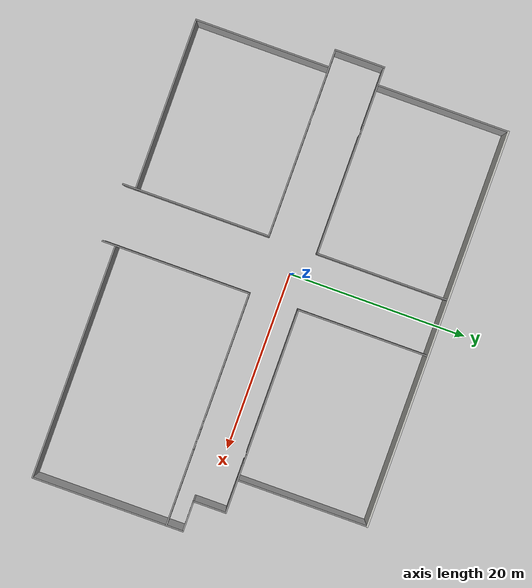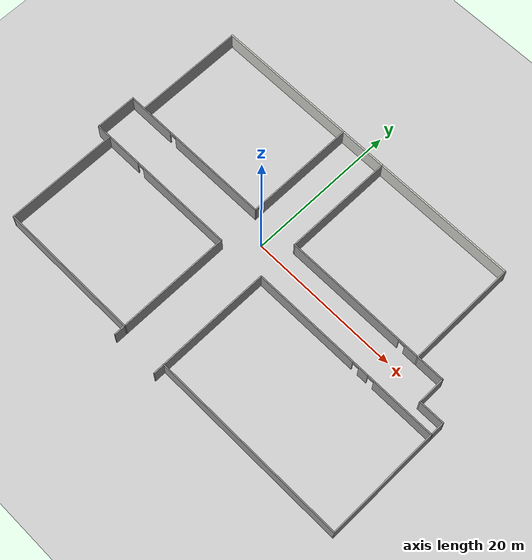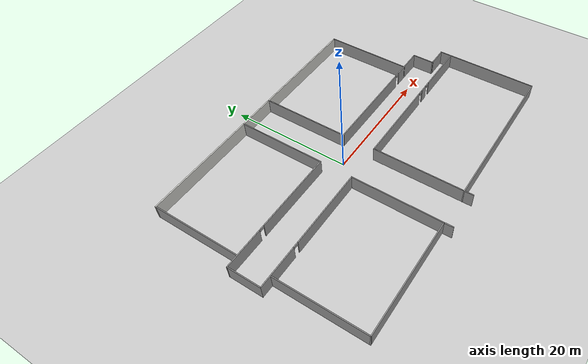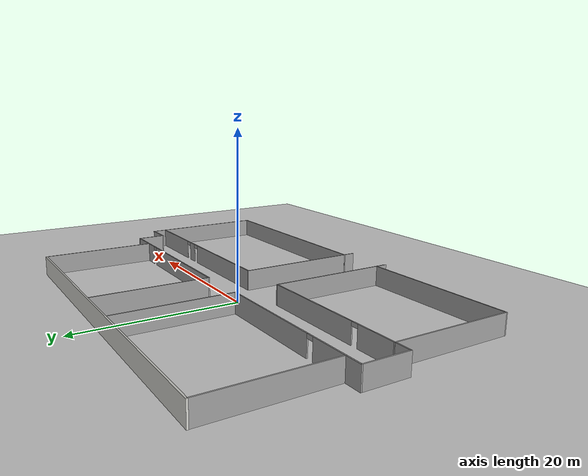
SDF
<sdf version="1.6">
 <world name="default">
  <model name="ground_plane">
   <static>1</static>
   <link name="link">
    <collision name="collision">
     <geometry><plane><normal>0 0 1</normal><size>100 100</size></plane></geometry>
     <surface>
      <contact><collide_bitmask>65535</collide_bitmask></contact>
      <friction><ode><mu>100</mu><mu2>50</mu2></ode></friction>
     </surface>
    </collision>
    <visual name="visual">
     <cast_shadows>0</cast_shadows>
     <geometry><plane><normal>0 0 1</normal><size>100 100</size></plane></geometry>
     <material>
      <script><uri>file://media/materials/scripts/gazebo.material</uri><name>Gazebo/Grey</name></script>
     </material>
    </visual>
   </link>
  </model>
  <model name="H_Block_Model">
   <link name="Wall_10">
    <pose>-26.5 0.832901 0 0 0 -1.5708</pose>
    <visual name="Wall_10_Visual">
     <pose>0 0 1.25 0 -0 0</pose>
     <geometry><box><size>5.593 0.15 2.5</size></box></geometry>
     <material>
      <script><uri>file://media/materials/scripts/gazebo.material</uri><name>Gazebo/Grey</name></script>
      <ambient>1 1 1 1</ambient>
     </material>
     <meta><layer>0</layer></meta>
    </visual>
    <collision name="Wall_10_Collision">
     <pose>0 0 1.25 0 -0 0</pose>
     <geometry><box><size>5.593 0.15 2.5</size></box></geometry>
     <surface>
      <friction>
       <ode><mu>1</mu><mu2>1</mu2><fdir1>0 0 0</fdir1><slip1>0</slip1><slip2>0</slip2></ode>
       <torsional>
        <coefficient>1</coefficient>
        <patch_radius>0</patch_radius>
        <surface_radius>0</surface_radius>
        <use_patch_radius>1</use_patch_radius>
        <ode><slip>0</slip></ode>
       </torsional>
      </friction>
      <bounce><restitution_coefficient>0</restitution_coefficient><threshold>1e+06</threshold></bounce>
      <contact>
       <collide_without_contact>0</collide_without_contact>
       <collide_without_contact_bitmask>1</collide_without_contact_bitmask>
       <collide_bitmask>1</collide_bitmask>
       <ode>
        <soft_cfm>0</soft_cfm>
        <soft_erp>0.2</soft_erp>
        <kp>1e+13</kp>
        <kd>1</kd>
        <max_vel>0.01</max_vel>
        <min_depth>0</min_depth>
       </ode>
       <bullet>
        <split_impulse>1</split_impulse>
        <split_impulse_penetration_threshold>-0.01</split_impulse_penetration_threshold>
        <soft_cfm>0</soft_cfm>
        <soft_erp>0.2</soft_erp>
        <kp>1e+13</kp>
        <kd>1</kd>
       </bullet>
      </contact>
     </surface>
    </collision>
   </link>
   <link name="Wall_11">
    <pose>-16.11 -1.8886 0 0 -0 0</pose>
    <visual name="Wall_11_Visual_0">
     <pose>-7.00772 0 1.25 0 -0 0</pose>
     <geometry><box><size>6.9143 0.15 2.5</size></box></geometry>
     <material>
      <script><uri>file://media/materials/scripts/gazebo.material</uri><name>Gazebo/Grey</name></script>
      <ambient>1 1 1 1</ambient>
     </material>
     <meta><layer>0</layer></meta>
    </visual>
    <visual name="Wall_11_Visual_1">
     <pose>3.90715 0 1.25 0 -0 0</pose>
     <geometry><box><size>13.1154 0.15 2.5</size></box></geometry>
     <material>
      <script><uri>file://media/materials/scripts/gazebo.material</uri><name>Gazebo/Grey</name></script>
      <ambient>1 1 1 1</ambient>
     </material>
     <meta><layer>0</layer></meta>
    </visual>
    <visual name="Wall_11_Visual_2">
     <pose>-3.10057 0 2.25 0 -0 0</pose>
     <geometry><box><size>0.9 0.15 0.5</size></box></geometry>
     <material>
      <script><uri>file://media/materials/scripts/gazebo.material</uri><name>Gazebo/Grey</name></script>
      <ambient>1 1 1 1</ambient>
     </material>
     <meta><layer>0</layer></meta>
    </visual>
    <collision name="Wall_11_Collision_0">
     <pose>-7.00772 0 1.25 0 -0 0</pose>
     <geometry><box><size>6.9143 0.15 2.5</size></box></geometry>
     <surface>
      <friction>
       <ode><mu>1</mu><mu2>1</mu2><fdir1>0 0 0</fdir1><slip1>0</slip1><slip2>0</slip2></ode>
       <torsional>
        <coefficient>1</coefficient>
        <patch_radius>0</patch_radius>
        <surface_radius>0</surface_radius>
        <use_patch_radius>1</use_patch_radius>
        <ode><slip>0</slip></ode>
       </torsional>
      </friction>
      <bounce><restitution_coefficient>0</restitution_coefficient><threshold>1e+06</threshold></bounce>
      <contact>
       <collide_without_contact>0</collide_without_contact>
       <collide_without_contact_bitmask>1</collide_without_contact_bitmask>
       <collide_bitmask>1</collide_bitmask>
       <ode>
        <soft_cfm>0</soft_cfm>
        <soft_erp>0.2</soft_erp>
        <kp>1e+13</kp>
        <kd>1</kd>
        <max_vel>0.01</max_vel>
        <min_depth>0</min_depth>
       </ode>
       <bullet>
        <split_impulse>1</split_impulse>
        <split_impulse_penetration_threshold>-0.01</split_impulse_penetration_threshold>
        <soft_cfm>0</soft_cfm>
        <soft_erp>0.2</soft_erp>
        <kp>1e+13</kp>
        <kd>1</kd>
       </bullet>
      </contact>
     </surface>
    </collision>
    <collision name="Wall_11_Collision_1">
     <pose>3.90715 0 1.25 0 -0 0</pose>
     <geometry><box><size>13.1154 0.15 2.5</size></box></geometry>
     <surface>
      <friction>
       <ode><mu>1</mu><mu2>1</mu2><fdir1>0 0 0</fdir1><slip1>0</slip1><slip2>0</slip2></ode>
       <torsional>
        <coefficient>1</coefficient>
        <patch_radius>0</patch_radius>
        <surface_radius>0</surface_radius>
        <use_patch_radius>1</use_patch_radius>
        <ode><slip>0</slip></ode>
       </torsional>
      </friction>
      <bounce><restitution_coefficient>0</restitution_coefficient><threshold>1e+06</threshold></bounce>
      <contact>
       <collide_without_contact>0</collide_without_contact>
       <collide_without_contact_bitmask>1</collide_without_contact_bitmask>
       <collide_bitmask>1</collide_bitmask>
       <ode>
        <soft_cfm>0</soft_cfm>
        <soft_erp>0.2</soft_erp>
        <kp>1e+13</kp>
        <kd>1</kd>
        <max_vel>0.01</max_vel>
        <min_depth>0</min_depth>
       </ode>
       <bullet>
        <split_impulse>1</split_impulse>
        <split_impulse_penetration_threshold>-0.01</split_impulse_penetration_threshold>
        <soft_cfm>0</soft_cfm>
        <soft_erp>0.2</soft_erp>
        <kp>1e+13</kp>
        <kd>1</kd>
       </bullet>
      </contact>
     </surface>
    </collision>
    <collision name="Wall_11_Collision_2">
     <pose>-3.10057 0 2.25 0 -0 0</pose>
     <geometry><box><size>0.9 0.15 0.5</size></box></geometry>
     <surface>
      <friction>
       <ode><mu>1</mu><mu2>1</mu2><fdir1>0 0 0</fdir1><slip1>0</slip1><slip2>0</slip2></ode>
       <torsional>
        <coefficient>1</coefficient>
        <patch_radius>0</patch_radius>
        <surface_radius>0</surface_radius>
        <use_patch_radius>1</use_patch_radius>
        <ode><slip>0</slip></ode>
       </torsional>
      </friction>
      <bounce><restitution_coefficient>0</restitution_coefficient><threshold>1e+06</threshold></bounce>
      <contact>
       <collide_without_contact>0</collide_without_contact>
       <collide_without_contact_bitmask>1</collide_without_contact_bitmask>
       <collide_bitmask>1</collide_bitmask>
       <ode>
        <soft_cfm>0</soft_cfm>
        <soft_erp>0.2</soft_erp>
        <kp>1e+13</kp>
        <kd>1</kd>
        <max_vel>0.01</max_vel>
        <min_depth>0</min_depth>
       </ode>
       <bullet>
        <split_impulse>1</split_impulse>
        <split_impulse_penetration_threshold>-0.01</split_impulse_penetration_threshold>
        <soft_cfm>0</soft_cfm>
        <soft_erp>0.2</soft_erp>
        <kp>1e+13</kp>
        <kd>1</kd>
       </bullet>
      </contact>
     </surface>
    </collision>
   </link>
   <link name="Wall_12">
    <pose>-5.72016 -10.0169 0 0 0 -1.57082</pose>
    <visual name="Wall_12_Visual">
     <pose>0 0 1.25 0 -0 0</pose>
     <geometry><box><size>16.407 0.15 2.5</size></box></geometry>
     <material>
      <script><uri>file://media/materials/scripts/gazebo.material</uri><name>Gazebo/Grey</name></script>
      <ambient>1 1 1 1</ambient>
     </material>
     <meta><layer>0</layer></meta>
    </visual>
    <collision name="Wall_12_Collision">
     <pose>0 0 1.25 0 -0 0</pose>
     <geometry><box><size>16.407 0.15 2.5</size></box></geometry>
     <surface>
      <friction>
       <ode><mu>1</mu><mu2>1</mu2><fdir1>0 0 0</fdir1><slip1>0</slip1><slip2>0</slip2></ode>
       <torsional>
        <coefficient>1</coefficient>
        <patch_radius>0</patch_radius>
        <surface_radius>0</surface_radius>
        <use_patch_radius>1</use_patch_radius>
        <ode><slip>0</slip></ode>
       </torsional>
      </friction>
      <bounce><restitution_coefficient>0</restitution_coefficient><threshold>1e+06</threshold></bounce>
      <contact>
       <collide_without_contact>0</collide_without_contact>
       <collide_without_contact_bitmask>1</collide_without_contact_bitmask>
       <collide_bitmask>1</collide_bitmask>
       <ode>
        <soft_cfm>0</soft_cfm>
        <soft_erp>0.2</soft_erp>
        <kp>1e+13</kp>
        <kd>1</kd>
        <max_vel>0.01</max_vel>
        <min_depth>0</min_depth>
       </ode>
       <bullet>
        <split_impulse>1</split_impulse>
        <split_impulse_penetration_threshold>-0.01</split_impulse_penetration_threshold>
        <soft_cfm>0</soft_cfm>
        <soft_erp>0.2</soft_erp>
        <kp>1e+13</kp>
        <kd>1</kd>
       </bullet>
      </contact>
     </surface>
    </collision>
   </link>
   <link name="Wall_14">
    <pose>0.629841 -9.9704 0 0 -0 1.57078</pose>
    <visual name="Wall_14_Visual">
     <pose>0 0 1.25 0 -0 0</pose>
     <geometry><box><size>16.5 0.15 2.5</size></box></geometry>
     <material>
      <script><uri>file://media/materials/scripts/gazebo.material</uri><name>Gazebo/Grey</name></script>
      <ambient>1 1 1 1</ambient>
     </material>
     <meta><layer>0</layer></meta>
    </visual>
    <collision name="Wall_14_Collision">
     <pose>0 0 1.25 0 -0 0</pose>
     <geometry><box><size>16.5 0.15 2.5</size></box></geometry>
     <surface>
      <friction>
       <ode><mu>1</mu><mu2>1</mu2><fdir1>0 0 0</fdir1><slip1>0</slip1><slip2>0</slip2></ode>
       <torsional>
        <coefficient>1</coefficient>
        <patch_radius>0</patch_radius>
        <surface_radius>0</surface_radius>
        <use_patch_radius>1</use_patch_radius>
        <ode><slip>0</slip></ode>
       </torsional>
      </friction>
      <bounce><restitution_coefficient>0</restitution_coefficient><threshold>1e+06</threshold></bounce>
      <contact>
       <collide_without_contact>0</collide_without_contact>
       <collide_without_contact_bitmask>1</collide_without_contact_bitmask>
       <collide_bitmask>1</collide_bitmask>
       <ode>
        <soft_cfm>0</soft_cfm>
        <soft_erp>0.2</soft_erp>
        <kp>1e+13</kp>
        <kd>1</kd>
        <max_vel>0.01</max_vel>
        <min_depth>0</min_depth>
       </ode>
       <bullet>
        <split_impulse>1</split_impulse>
        <split_impulse_penetration_threshold>-0.01</split_impulse_penetration_threshold>
        <soft_cfm>0</soft_cfm>
        <soft_erp>0.2</soft_erp>
        <kp>1e+13</kp>
        <kd>1</kd>
       </bullet>
      </contact>
     </surface>
    </collision>
   </link>
   <link name="Wall_15">
    <pose>13.565 -1.7956 0 0 -0 0</pose>
    <visual name="Wall_15_Visual_0">
     <pose>-5.84501 0 1.25 0 -0 0</pose>
     <geometry><box><size>14.33 0.15 2.5</size></box></geometry>
     <material>
      <script><uri>file://media/materials/scripts/gazebo.material</uri><name>Gazebo/Grey</name></script>
      <ambient>1 1 1 1</ambient>
     </material>
     <meta><layer>0</layer></meta>
    </visual>
    <visual name="Wall_15_Visual_1">
     <pose>2.89569 0 1.25 0 -0 0</pose>
     <geometry><box><size>1.35144 0.15 2.5</size></box></geometry>
     <material>
      <script><uri>file://media/materials/scripts/gazebo.material</uri><name>Gazebo/Grey</name></script>
      <ambient>1 1 1 1</ambient>
     </material>
     <meta><layer>0</layer></meta>
    </visual>
    <visual name="Wall_15_Visual_2">
     <pose>8.74071 0 1.25 0 -0 0</pose>
     <geometry><box><size>8.53858 0.15 2.5</size></box></geometry>
     <material>
      <script><uri>file://media/materials/scripts/gazebo.material</uri><name>Gazebo/Grey</name></script>
      <ambient>1 1 1 1</ambient>
     </material>
     <meta><layer>0</layer></meta>
    </visual>
    <visual name="Wall_15_Visual_3">
     <pose>1.76997 0 2.25 0 -0 0</pose>
     <geometry><box><size>0.9 0.15 0.5</size></box></geometry>
     <material>
      <script><uri>file://media/materials/scripts/gazebo.material</uri><name>Gazebo/Grey</name></script>
      <ambient>1 1 1 1</ambient>
     </material>
     <meta><layer>0</layer></meta>
    </visual>
    <visual name="Wall_15_Visual_4">
     <pose>4.02142 0 2.25 0 -0 0</pose>
     <geometry><box><size>0.9 0.15 0.5</size></box></geometry>
     <material>
      <script><uri>file://media/materials/scripts/gazebo.material</uri><name>Gazebo/Grey</name></script>
      <ambient>1 1 1 1</ambient>
     </material>
     <meta><layer>0</layer></meta>
    </visual>
    <collision name="Wall_15_Collision_0">
     <pose>-5.84501 0 1.25 0 -0 0</pose>
     <geometry><box><size>14.33 0.15 2.5</size></box></geometry>
     <surface>
      <friction>
       <ode><mu>1</mu><mu2>1</mu2><fdir1>0 0 0</fdir1><slip1>0</slip1><slip2>0</slip2></ode>
       <torsional>
        <coefficient>1</coefficient>
        <patch_radius>0</patch_radius>
        <surface_radius>0</surface_radius>
        <use_patch_radius>1</use_patch_radius>
        <ode><slip>0</slip></ode>
       </torsional>
      </friction>
      <bounce><restitution_coefficient>0</restitution_coefficient><threshold>1e+06</threshold></bounce>
      <contact>
       <collide_without_contact>0</collide_without_contact>
       <collide_without_contact_bitmask>1</collide_without_contact_bitmask>
       <collide_bitmask>1</collide_bitmask>
       <ode>
        <soft_cfm>0</soft_cfm>
        <soft_erp>0.2</soft_erp>
        <kp>1e+13</kp>
        <kd>1</kd>
        <max_vel>0.01</max_vel>
        <min_depth>0</min_depth>
       </ode>
       <bullet>
        <split_impulse>1</split_impulse>
        <split_impulse_penetration_threshold>-0.01</split_impulse_penetration_threshold>
        <soft_cfm>0</soft_cfm>
        <soft_erp>0.2</soft_erp>
        <kp>1e+13</kp>
        <kd>1</kd>
       </bullet>
      </contact>
     </surface>
    </collision>
    <collision name="Wall_15_Collision_1">
     <pose>2.89569 0 1.25 0 -0 0</pose>
     <geometry><box><size>1.35144 0.15 2.5</size></box></geometry>
     <surface>
      <friction>
       <ode><mu>1</mu><mu2>1</mu2><fdir1>0 0 0</fdir1><slip1>0</slip1><slip2>0</slip2></ode>
       <torsional>
        <coefficient>1</coefficient>
        <patch_radius>0</patch_radius>
        <surface_radius>0</surface_radius>
        <use_patch_radius>1</use_patch_radius>
        <ode><slip>0</slip></ode>
       </torsional>
      </friction>
      <bounce><restitution_coefficient>0</restitution_coefficient><threshold>1e+06</threshold></bounce>
      <contact>
       <collide_without_contact>0</collide_without_contact>
       <collide_without_contact_bitmask>1</collide_without_contact_bitmask>
       <collide_bitmask>1</collide_bitmask>
       <ode>
        <soft_cfm>0</soft_cfm>
        <soft_erp>0.2</soft_erp>
        <kp>1e+13</kp>
        <kd>1</kd>
        <max_vel>0.01</max_vel>
        <min_depth>0</min_depth>
       </ode>
       <bullet>
        <split_impulse>1</split_impulse>
        <split_impulse_penetration_threshold>-0.01</split_impulse_penetration_threshold>
        <soft_cfm>0</soft_cfm>
        <soft_erp>0.2</soft_erp>
        <kp>1e+13</kp>
        <kd>1</kd>
       </bullet>
      </contact>
     </surface>
    </collision>
    <collision name="Wall_15_Collision_2">
     <pose>8.74071 0 1.25 0 -0 0</pose>
     <geometry><box><size>8.53858 0.15 2.5</size></box></geometry>
     <surface>
      <friction>
       <ode><mu>1</mu><mu2>1</mu2><fdir1>0 0 0</fdir1><slip1>0</slip1><slip2>0</slip2></ode>
       <torsional>
        <coefficient>1</coefficient>
        <patch_radius>0</patch_radius>
        <surface_radius>0</surface_radius>
        <use_patch_radius>1</use_patch_radius>
        <ode><slip>0</slip></ode>
       </torsional>
      </friction>
      <bounce><restitution_coefficient>0</restitution_coefficient><threshold>1e+06</threshold></bounce>
      <contact>
       <collide_without_contact>0</collide_without_contact>
       <collide_without_contact_bitmask>1</collide_without_contact_bitmask>
       <collide_bitmask>1</collide_bitmask>
       <ode>
        <soft_cfm>0</soft_cfm>
        <soft_erp>0.2</soft_erp>
        <kp>1e+13</kp>
        <kd>1</kd>
        <max_vel>0.01</max_vel>
        <min_depth>0</min_depth>
       </ode>
       <bullet>
        <split_impulse>1</split_impulse>
        <split_impulse_penetration_threshold>-0.01</split_impulse_penetration_threshold>
        <soft_cfm>0</soft_cfm>
        <soft_erp>0.2</soft_erp>
        <kp>1e+13</kp>
        <kd>1</kd>
       </bullet>
      </contact>
     </surface>
    </collision>
    <collision name="Wall_15_Collision_3">
     <pose>1.76997 0 2.25 0 -0 0</pose>
     <geometry><box><size>0.9 0.15 0.5</size></box></geometry>
     <surface>
      <friction>
       <ode><mu>1</mu><mu2>1</mu2><fdir1>0 0 0</fdir1><slip1>0</slip1><slip2>0</slip2></ode>
       <torsional>
        <coefficient>1</coefficient>
        <patch_radius>0</patch_radius>
        <surface_radius>0</surface_radius>
        <use_patch_radius>1</use_patch_radius>
        <ode><slip>0</slip></ode>
       </torsional>
      </friction>
      <bounce><restitution_coefficient>0</restitution_coefficient><threshold>1e+06</threshold></bounce>
      <contact>
       <collide_without_contact>0</collide_without_contact>
       <collide_without_contact_bitmask>1</collide_without_contact_bitmask>
       <collide_bitmask>1</collide_bitmask>
       <ode>
        <soft_cfm>0</soft_cfm>
        <soft_erp>0.2</soft_erp>
        <kp>1e+13</kp>
        <kd>1</kd>
        <max_vel>0.01</max_vel>
        <min_depth>0</min_depth>
       </ode>
       <bullet>
        <split_impulse>1</split_impulse>
        <split_impulse_penetration_threshold>-0.01</split_impulse_penetration_threshold>
        <soft_cfm>0</soft_cfm>
        <soft_erp>0.2</soft_erp>
        <kp>1e+13</kp>
        <kd>1</kd>
       </bullet>
      </contact>
     </surface>
    </collision>
    <collision name="Wall_15_Collision_4">
     <pose>4.02142 0 2.25 0 -0 0</pose>
     <geometry><box><size>0.9 0.15 0.5</size></box></geometry>
     <surface>
      <friction>
       <ode><mu>1</mu><mu2>1</mu2><fdir1>0 0 0</fdir1><slip1>0</slip1><slip2>0</slip2></ode>
       <torsional>
        <coefficient>1</coefficient>
        <patch_radius>0</patch_radius>
        <surface_radius>0</surface_radius>
        <use_patch_radius>1</use_patch_radius>
        <ode><slip>0</slip></ode>
       </torsional>
      </friction>
      <bounce><restitution_coefficient>0</restitution_coefficient><threshold>1e+06</threshold></bounce>
      <contact>
       <collide_without_contact>0</collide_without_contact>
       <collide_without_contact_bitmask>1</collide_without_contact_bitmask>
       <collide_bitmask>1</collide_bitmask>
       <ode>
        <soft_cfm>0</soft_cfm>
        <soft_erp>0.2</soft_erp>
        <kp>1e+13</kp>
        <kd>1</kd>
        <max_vel>0.01</max_vel>
        <min_depth>0</min_depth>
       </ode>
       <bullet>
        <split_impulse>1</split_impulse>
        <split_impulse_penetration_threshold>-0.01</split_impulse_penetration_threshold>
        <soft_cfm>0</soft_cfm>
        <soft_erp>0.2</soft_erp>
        <kp>1e+13</kp>
        <kd>1</kd>
       </bullet>
      </contact>
     </surface>
    </collision>
   </link>
   <link name="Wall_2">
    <pose>-2.507 18.1204 0 0 -0 0</pose>
    <visual name="Wall_2_Visual">
     <pose>0 0 1.25 0 -0 0</pose>
     <geometry><box><size>44.214 0.2 2.5</size></box></geometry>
     <material>
      <script><uri>file://media/materials/scripts/gazebo.material</uri><name>Gazebo/CeilingTiled</name></script>
      <ambient>1 1 1 1</ambient>
     </material>
     <meta><layer>0</layer></meta>
    </visual>
    <collision name="Wall_2_Collision">
     <pose>0 0 1.25 0 -0 0</pose>
     <geometry><box><size>44.214 0.2 2.5</size></box></geometry>
     <surface>
      <friction>
       <ode><mu>1</mu><mu2>1</mu2><fdir1>0 0 0</fdir1><slip1>0</slip1><slip2>0</slip2></ode>
       <torsional>
        <coefficient>1</coefficient>
        <patch_radius>0</patch_radius>
        <surface_radius>0</surface_radius>
        <use_patch_radius>1</use_patch_radius>
        <ode><slip>0</slip></ode>
       </torsional>
      </friction>
      <bounce><restitution_coefficient>0</restitution_coefficient><threshold>1e+06</threshold></bounce>
      <contact>
       <collide_without_contact>0</collide_without_contact>
       <collide_without_contact_bitmask>1</collide_without_contact_bitmask>
       <collide_bitmask>1</collide_bitmask>
       <ode>
        <soft_cfm>0</soft_cfm>
        <soft_erp>0.2</soft_erp>
        <kp>1e+13</kp>
        <kd>1</kd>
        <max_vel>0.01</max_vel>
        <min_depth>0</min_depth>
       </ode>
       <bullet>
        <split_impulse>1</split_impulse>
        <split_impulse_penetration_threshold>-0.01</split_impulse_penetration_threshold>
        <soft_cfm>0</soft_cfm>
        <soft_erp>0.2</soft_erp>
        <kp>1e+13</kp>
        <kd>1</kd>
       </bullet>
      </contact>
     </surface>
    </collision>
   </link>
   <link name="Wall_20">
    <pose>0.53 10.8874 0 0 -0 1.5708</pose>
    <visual name="Wall_20_Visual">
     <pose>0 0 1.25 0 -0 0</pose>
     <geometry><box><size>14.616 0.15 2.5</size></box></geometry>
     <material>
      <script><uri>file://media/materials/scripts/gazebo.material</uri><name>Gazebo/Grey</name></script>
      <ambient>1 1 1 1</ambient>
     </material>
     <meta><layer>0</layer></meta>
    </visual>
    <collision name="Wall_20_Collision">
     <pose>0 0 1.25 0 -0 0</pose>
     <geometry><box><size>14.616 0.15 2.5</size></box></geometry>
     <surface>
      <friction>
       <ode><mu>1</mu><mu2>1</mu2><fdir1>0 0 0</fdir1><slip1>0</slip1><slip2>0</slip2></ode>
       <torsional>
        <coefficient>1</coefficient>
        <patch_radius>0</patch_radius>
        <surface_radius>0</surface_radius>
        <use_patch_radius>1</use_patch_radius>
        <ode><slip>0</slip></ode>
       </torsional>
      </friction>
      <bounce><restitution_coefficient>0</restitution_coefficient><threshold>1e+06</threshold></bounce>
      <contact>
       <collide_without_contact>0</collide_without_contact>
       <collide_without_contact_bitmask>1</collide_without_contact_bitmask>
       <collide_bitmask>1</collide_bitmask>
       <ode>
        <soft_cfm>0</soft_cfm>
        <soft_erp>0.2</soft_erp>
        <kp>1e+13</kp>
        <kd>1</kd>
        <max_vel>0.01</max_vel>
        <min_depth>0</min_depth>
       </ode>
       <bullet>
        <split_impulse>1</split_impulse>
        <split_impulse_penetration_threshold>-0.01</split_impulse_penetration_threshold>
        <soft_cfm>0</soft_cfm>
        <soft_erp>0.2</soft_erp>
        <kp>1e+13</kp>
        <kd>1</kd>
       </bullet>
      </contact>
     </surface>
    </collision>
   </link>
   <link name="Wall_22">
    <pose>26.5 -0.870599 0 0 -0 1.5708</pose>
    <visual name="Wall_22_Visual">
     <pose>0 0 1.25 0 -0 0</pose>
     <geometry><box><size>2 0.15 2.5</size></box></geometry>
     <material>
      <script><uri>file://media/materials/scripts/gazebo.material</uri><name>Gazebo/Grey</name></script>
      <ambient>1 1 1 1</ambient>
     </material>
     <meta><layer>0</layer></meta>
    </visual>
    <collision name="Wall_22_Collision">
     <pose>0 0 1.25 0 -0 0</pose>
     <geometry><box><size>2 0.15 2.5</size></box></geometry>
     <surface>
      <friction>
       <ode><mu>1</mu><mu2>1</mu2><fdir1>0 0 0</fdir1><slip1>0</slip1><slip2>0</slip2></ode>
       <torsional>
        <coefficient>1</coefficient>
        <patch_radius>0</patch_radius>
        <surface_radius>0</surface_radius>
        <use_patch_radius>1</use_patch_radius>
        <ode><slip>0</slip></ode>
       </torsional>
      </friction>
      <bounce><restitution_coefficient>0</restitution_coefficient><threshold>1e+06</threshold></bounce>
      <contact>
       <collide_without_contact>0</collide_without_contact>
       <collide_without_contact_bitmask>1</collide_without_contact_bitmask>
       <collide_bitmask>1</collide_bitmask>
       <ode>
        <soft_cfm>0</soft_cfm>
        <soft_erp>0.2</soft_erp>
        <kp>1e+13</kp>
        <kd>1</kd>
        <max_vel>0.01</max_vel>
        <min_depth>0</min_depth>
       </ode>
       <bullet>
        <split_impulse>1</split_impulse>
        <split_impulse_penetration_threshold>-0.01</split_impulse_penetration_threshold>
        <soft_cfm>0</soft_cfm>
        <soft_erp>0.2</soft_erp>
        <kp>1e+13</kp>
        <kd>1</kd>
       </bullet>
      </contact>
     </surface>
    </collision>
   </link>
   <link name="Wall_23">
    <pose>24.825 0.054401 0 0 -0 3.14159</pose>
    <visual name="Wall_23_Visual">
     <pose>0 0 1.25 0 -0 0</pose>
     <geometry><box><size>3.5 0.15 2.5</size></box></geometry>
     <material>
      <script><uri>file://media/materials/scripts/gazebo.material</uri><name>Gazebo/Grey</name></script>
      <ambient>1 1 1 1</ambient>
     </material>
     <meta><layer>0</layer></meta>
    </visual>
    <collision name="Wall_23_Collision">
     <pose>0 0 1.25 0 -0 0</pose>
     <geometry><box><size>3.5 0.15 2.5</size></box></geometry>
     <surface>
      <friction>
       <ode><mu>1</mu><mu2>1</mu2><fdir1>0 0 0</fdir1><slip1>0</slip1><slip2>0</slip2></ode>
       <torsional>
        <coefficient>1</coefficient>
        <patch_radius>0</patch_radius>
        <surface_radius>0</surface_radius>
        <use_patch_radius>1</use_patch_radius>
        <ode><slip>0</slip></ode>
       </torsional>
      </friction>
      <bounce><restitution_coefficient>0</restitution_coefficient><threshold>1e+06</threshold></bounce>
      <contact>
       <collide_without_contact>0</collide_without_contact>
       <collide_without_contact_bitmask>1</collide_without_contact_bitmask>
       <collide_bitmask>1</collide_bitmask>
       <ode>
        <soft_cfm>0</soft_cfm>
        <soft_erp>0.2</soft_erp>
        <kp>1e+13</kp>
        <kd>1</kd>
        <max_vel>0.01</max_vel>
        <min_depth>0</min_depth>
       </ode>
       <bullet>
        <split_impulse>1</split_impulse>
        <split_impulse_penetration_threshold>-0.01</split_impulse_penetration_threshold>
        <soft_cfm>0</soft_cfm>
        <soft_erp>0.2</soft_erp>
        <kp>1e+13</kp>
        <kd>1</kd>
       </bullet>
      </contact>
     </surface>
    </collision>
   </link>
   <link name="Wall_24">
    <pose>23.15 1.8544 0 0 -0 1.5708</pose>
    <visual name="Wall_24_Visual">
     <pose>0 0 1.25 0 -0 0</pose>
     <geometry><box><size>3.75 0.15 2.5</size></box></geometry>
     <material>
      <script><uri>file://media/materials/scripts/gazebo.material</uri><name>Gazebo/Grey</name></script>
      <ambient>1 1 1 1</ambient>
     </material>
     <meta><layer>0</layer></meta>
    </visual>
    <collision name="Wall_24_Collision">
     <pose>0 0 1.25 0 -0 0</pose>
     <geometry><box><size>3.75 0.15 2.5</size></box></geometry>
     <surface>
      <friction>
       <ode><mu>1</mu><mu2>1</mu2><fdir1>0 0 0</fdir1><slip1>0</slip1><slip2>0</slip2></ode>
       <torsional>
        <coefficient>1</coefficient>
        <patch_radius>0</patch_radius>
        <surface_radius>0</surface_radius>
        <use_patch_radius>1</use_patch_radius>
        <ode><slip>0</slip></ode>
       </torsional>
      </friction>
      <bounce><restitution_coefficient>0</restitution_coefficient><threshold>1e+06</threshold></bounce>
      <contact>
       <collide_without_contact>0</collide_without_contact>
       <collide_without_contact_bitmask>1</collide_without_contact_bitmask>
       <collide_bitmask>1</collide_bitmask>
       <ode>
        <soft_cfm>0</soft_cfm>
        <soft_erp>0.2</soft_erp>
        <kp>1e+13</kp>
        <kd>1</kd>
        <max_vel>0.01</max_vel>
        <min_depth>0</min_depth>
       </ode>
       <bullet>
        <split_impulse>1</split_impulse>
        <split_impulse_penetration_threshold>-0.01</split_impulse_penetration_threshold>
        <soft_cfm>0</soft_cfm>
        <soft_erp>0.2</soft_erp>
        <kp>1e+13</kp>
        <kd>1</kd>
       </bullet>
      </contact>
     </surface>
    </collision>
   </link>
   <link name="Wall_25">
    <pose>11.84 3.6544 0 0 -0 3.14159</pose>
    <visual name="Wall_25_Visual_0">
     <pose>-8.56212 0 1.25 0 -0 0</pose>
     <geometry><box><size>5.64607 0.15 2.5</size></box></geometry>
     <material>
      <script><uri>file://media/materials/scripts/gazebo.material</uri><name>Gazebo/Grey</name></script>
      <ambient>1 1 1 1</ambient>
     </material>
     <meta><layer>0</layer></meta>
    </visual>
    <visual name="Wall_25_Visual_1">
     <pose>3.27303 0 1.25 0 -0 0</pose>
     <geometry><box><size>16.2242 0.15 2.5</size></box></geometry>
     <material>
      <script><uri>file://media/materials/scripts/gazebo.material</uri><name>Gazebo/Grey</name></script>
      <ambient>1 1 1 1</ambient>
     </material>
     <meta><layer>0</layer></meta>
    </visual>
    <visual name="Wall_25_Visual_2">
     <pose>-5.28909 0 2.25 0 -0 0</pose>
     <geometry><box><size>0.9 0.15 0.5</size></box></geometry>
     <material>
      <script><uri>file://media/materials/scripts/gazebo.material</uri><name>Gazebo/Grey</name></script>
      <ambient>1 1 1 1</ambient>
     </material>
     <meta><layer>0</layer></meta>
    </visual>
    <collision name="Wall_25_Collision_0">
     <pose>-8.56212 0 1.25 0 -0 0</pose>
     <geometry><box><size>5.64607 0.15 2.5</size></box></geometry>
     <surface>
      <friction>
       <ode><mu>1</mu><mu2>1</mu2><fdir1>0 0 0</fdir1><slip1>0</slip1><slip2>0</slip2></ode>
       <torsional>
        <coefficient>1</coefficient>
        <patch_radius>0</patch_radius>
        <surface_radius>0</surface_radius>
        <use_patch_radius>1</use_patch_radius>
        <ode><slip>0</slip></ode>
       </torsional>
      </friction>
      <bounce><restitution_coefficient>0</restitution_coefficient><threshold>1e+06</threshold></bounce>
      <contact>
       <collide_without_contact>0</collide_without_contact>
       <collide_without_contact_bitmask>1</collide_without_contact_bitmask>
       <collide_bitmask>1</collide_bitmask>
       <ode>
        <soft_cfm>0</soft_cfm>
        <soft_erp>0.2</soft_erp>
        <kp>1e+13</kp>
        <kd>1</kd>
        <max_vel>0.01</max_vel>
        <min_depth>0</min_depth>
       </ode>
       <bullet>
        <split_impulse>1</split_impulse>
        <split_impulse_penetration_threshold>-0.01</split_impulse_penetration_threshold>
        <soft_cfm>0</soft_cfm>
        <soft_erp>0.2</soft_erp>
        <kp>1e+13</kp>
        <kd>1</kd>
       </bullet>
      </contact>
     </surface>
    </collision>
    <collision name="Wall_25_Collision_1">
     <pose>3.27303 0 1.25 0 -0 0</pose>
     <geometry><box><size>16.2242 0.15 2.5</size></box></geometry>
     <surface>
      <friction>
       <ode><mu>1</mu><mu2>1</mu2><fdir1>0 0 0</fdir1><slip1>0</slip1><slip2>0</slip2></ode>
       <torsional>
        <coefficient>1</coefficient>
        <patch_radius>0</patch_radius>
        <surface_radius>0</surface_radius>
        <use_patch_radius>1</use_patch_radius>
        <ode><slip>0</slip></ode>
       </torsional>
      </friction>
      <bounce><restitution_coefficient>0</restitution_coefficient><threshold>1e+06</threshold></bounce>
      <contact>
       <collide_without_contact>0</collide_without_contact>
       <collide_without_contact_bitmask>1</collide_without_contact_bitmask>
       <collide_bitmask>1</collide_bitmask>
       <ode>
        <soft_cfm>0</soft_cfm>
        <soft_erp>0.2</soft_erp>
        <kp>1e+13</kp>
        <kd>1</kd>
        <max_vel>0.01</max_vel>
        <min_depth>0</min_depth>
       </ode>
       <bullet>
        <split_impulse>1</split_impulse>
        <split_impulse_penetration_threshold>-0.01</split_impulse_penetration_threshold>
        <soft_cfm>0</soft_cfm>
        <soft_erp>0.2</soft_erp>
        <kp>1e+13</kp>
        <kd>1</kd>
       </bullet>
      </contact>
     </surface>
    </collision>
    <collision name="Wall_25_Collision_2">
     <pose>-5.28909 0 2.25 0 -0 0</pose>
     <geometry><box><size>0.9 0.15 0.5</size></box></geometry>
     <surface>
      <friction>
       <ode><mu>1</mu><mu2>1</mu2><fdir1>0 0 0</fdir1><slip1>0</slip1><slip2>0</slip2></ode>
       <torsional>
        <coefficient>1</coefficient>
        <patch_radius>0</patch_radius>
        <surface_radius>0</surface_radius>
        <use_patch_radius>1</use_patch_radius>
        <ode><slip>0</slip></ode>
       </torsional>
      </friction>
      <bounce><restitution_coefficient>0</restitution_coefficient><threshold>1e+06</threshold></bounce>
      <contact>
       <collide_without_contact>0</collide_without_contact>
       <collide_without_contact_bitmask>1</collide_without_contact_bitmask>
       <collide_bitmask>1</collide_bitmask>
       <ode>
        <soft_cfm>0</soft_cfm>
        <soft_erp>0.2</soft_erp>
        <kp>1e+13</kp>
        <kd>1</kd>
        <max_vel>0.01</max_vel>
        <min_depth>0</min_depth>
       </ode>
       <bullet>
        <split_impulse>1</split_impulse>
        <split_impulse_penetration_threshold>-0.01</split_impulse_penetration_threshold>
        <soft_cfm>0</soft_cfm>
        <soft_erp>0.2</soft_erp>
        <kp>1e+13</kp>
        <kd>1</kd>
       </bullet>
      </contact>
     </surface>
    </collision>
   </link>
   <link name="Wall_27">
    <pose>-24.5588 -9.30178 0 0 0 -1.57082</pose>
    <visual name="Wall_27_Visual">
     <pose>0 0 1.25 0 -0 0</pose>
     <geometry><box><size>15 0.15 2.5</size></box></geometry>
     <material>
      <script><uri>file://media/materials/scripts/gazebo.material</uri><name>Gazebo/Grey</name></script>
      <ambient>1 1 1 1</ambient>
     </material>
     <meta><layer>0</layer></meta>
    </visual>
    <collision name="Wall_27_Collision">
     <pose>0 0 1.25 0 -0 0</pose>
     <geometry><box><size>15 0.15 2.5</size></box></geometry>
     <surface>
      <friction>
       <ode><mu>1</mu><mu2>1</mu2><fdir1>0 0 0</fdir1><slip1>0</slip1><slip2>0</slip2></ode>
       <torsional>
        <coefficient>1</coefficient>
        <patch_radius>0</patch_radius>
        <surface_radius>0</surface_radius>
        <use_patch_radius>1</use_patch_radius>
        <ode><slip>0</slip></ode>
       </torsional>
      </friction>
      <bounce><restitution_coefficient>0</restitution_coefficient><threshold>1e+06</threshold></bounce>
      <contact>
       <collide_without_contact>0</collide_without_contact>
       <collide_without_contact_bitmask>1</collide_without_contact_bitmask>
       <collide_bitmask>1</collide_bitmask>
       <ode>
        <soft_cfm>0</soft_cfm>
        <soft_erp>0.2</soft_erp>
        <kp>1e+13</kp>
        <kd>1</kd>
        <max_vel>0.01</max_vel>
        <min_depth>0</min_depth>
       </ode>
       <bullet>
        <split_impulse>1</split_impulse>
        <split_impulse_penetration_threshold>-0.01</split_impulse_penetration_threshold>
        <soft_cfm>0</soft_cfm>
        <soft_erp>0.2</soft_erp>
        <kp>1e+13</kp>
        <kd>1</kd>
       </bullet>
      </contact>
     </surface>
    </collision>
   </link>
   <link name="Wall_28">
    <pose>-15.1395 -16.7266 0 0 -0 0</pose>
    <visual name="Wall_28_Visual">
     <pose>0 0 1.25 0 -0 0</pose>
     <geometry><box><size>18.989 0.15 2.5</size></box></geometry>
     <material>
      <script><uri>file://media/materials/scripts/gazebo.material</uri><name>Gazebo/Grey</name></script>
      <ambient>1 1 1 1</ambient>
     </material>
     <meta><layer>0</layer></meta>
    </visual>
    <collision name="Wall_28_Collision">
     <pose>0 0 1.25 0 -0 0</pose>
     <geometry><box><size>18.989 0.15 2.5</size></box></geometry>
     <surface>
      <friction>
       <ode><mu>1</mu><mu2>1</mu2><fdir1>0 0 0</fdir1><slip1>0</slip1><slip2>0</slip2></ode>
       <torsional>
        <coefficient>1</coefficient>
        <patch_radius>0</patch_radius>
        <surface_radius>0</surface_radius>
        <use_patch_radius>1</use_patch_radius>
        <ode><slip>0</slip></ode>
       </torsional>
      </friction>
      <bounce><restitution_coefficient>0</restitution_coefficient><threshold>1e+06</threshold></bounce>
      <contact>
       <collide_without_contact>0</collide_without_contact>
       <collide_without_contact_bitmask>1</collide_without_contact_bitmask>
       <collide_bitmask>1</collide_bitmask>
       <ode>
        <soft_cfm>0</soft_cfm>
        <soft_erp>0.2</soft_erp>
        <kp>1e+13</kp>
        <kd>1</kd>
        <max_vel>0.01</max_vel>
        <min_depth>0</min_depth>
       </ode>
       <bullet>
        <split_impulse>1</split_impulse>
        <split_impulse_penetration_threshold>-0.01</split_impulse_penetration_threshold>
        <soft_cfm>0</soft_cfm>
        <soft_erp>0.2</soft_erp>
        <kp>1e+13</kp>
        <kd>1</kd>
       </bullet>
      </contact>
     </surface>
    </collision>
   </link>
   <link name="Wall_30">
    <pose>13.556 -16.7266 0 0 -0 0</pose>
    <visual name="Wall_30_Visual">
     <pose>0 0 1.25 0 -0 0</pose>
     <geometry><box><size>26.0375 0.15 2.5</size></box></geometry>
     <material>
      <script><uri>file://media/materials/scripts/gazebo.material</uri><name>Gazebo/Grey</name></script>
      <ambient>1 1 1 1</ambient>
     </material>
     <meta><layer>0</layer></meta>
    </visual>
    <collision name="Wall_30_Collision">
     <pose>0 0 1.25 0 -0 0</pose>
     <geometry><box><size>26.0375 0.15 2.5</size></box></geometry>
     <surface>
      <friction>
       <ode><mu>1</mu><mu2>1</mu2><fdir1>0 0 0</fdir1><slip1>0</slip1><slip2>0</slip2></ode>
       <torsional>
        <coefficient>1</coefficient>
        <patch_radius>0</patch_radius>
        <surface_radius>0</surface_radius>
        <use_patch_radius>1</use_patch_radius>
        <ode><slip>0</slip></ode>
       </torsional>
      </friction>
      <bounce><restitution_coefficient>0</restitution_coefficient><threshold>1e+06</threshold></bounce>
      <contact>
       <collide_without_contact>0</collide_without_contact>
       <collide_without_contact_bitmask>1</collide_without_contact_bitmask>
       <collide_bitmask>1</collide_bitmask>
       <ode>
        <soft_cfm>0</soft_cfm>
        <soft_erp>0.2</soft_erp>
        <kp>1e+13</kp>
        <kd>1</kd>
        <max_vel>0.01</max_vel>
        <min_depth>0</min_depth>
       </ode>
       <bullet>
        <split_impulse>1</split_impulse>
        <split_impulse_penetration_threshold>-0.01</split_impulse_penetration_threshold>
        <soft_cfm>0</soft_cfm>
        <soft_erp>0.2</soft_erp>
        <kp>1e+13</kp>
        <kd>1</kd>
       </bullet>
      </contact>
     </surface>
    </collision>
   </link>
   <link name="Wall_31">
    <pose>26.5 -9.2611 0 0 -0 1.5708</pose>
    <visual name="Wall_31_Visual">
     <pose>0 0 1.25 0 -0 0</pose>
     <geometry><box><size>15.081 0.15 2.5</size></box></geometry>
     <material>
      <script><uri>file://media/materials/scripts/gazebo.material</uri><name>Gazebo/Grey</name></script>
      <ambient>1 1 1 1</ambient>
     </material>
     <meta><layer>0</layer></meta>
    </visual>
    <collision name="Wall_31_Collision">
     <pose>0 0 1.25 0 -0 0</pose>
     <geometry><box><size>15.081 0.15 2.5</size></box></geometry>
     <surface>
      <friction>
       <ode><mu>1</mu><mu2>1</mu2><fdir1>0 0 0</fdir1><slip1>0</slip1><slip2>0</slip2></ode>
       <torsional>
        <coefficient>1</coefficient>
        <patch_radius>0</patch_radius>
        <surface_radius>0</surface_radius>
        <use_patch_radius>1</use_patch_radius>
        <ode><slip>0</slip></ode>
       </torsional>
      </friction>
      <bounce><restitution_coefficient>0</restitution_coefficient><threshold>1e+06</threshold></bounce>
      <contact>
       <collide_without_contact>0</collide_without_contact>
       <collide_without_contact_bitmask>1</collide_without_contact_bitmask>
       <collide_bitmask>1</collide_bitmask>
       <ode>
        <soft_cfm>0</soft_cfm>
        <soft_erp>0.2</soft_erp>
        <kp>1e+13</kp>
        <kd>1</kd>
        <max_vel>0.01</max_vel>
        <min_depth>0</min_depth>
       </ode>
       <bullet>
        <split_impulse>1</split_impulse>
        <split_impulse_penetration_threshold>-0.01</split_impulse_penetration_threshold>
        <soft_cfm>0</soft_cfm>
        <soft_erp>0.2</soft_erp>
        <kp>1e+13</kp>
        <kd>1</kd>
       </bullet>
      </contact>
     </surface>
    </collision>
   </link>
   <link name="Wall_4">
    <pose>-24.514 10.8869 0 0 0 -1.5708</pose>
    <visual name="Wall_4_Visual">
     <pose>0 0 1.25 0 -0 0</pose>
     <geometry><box><size>14.6174 0.15 2.5</size></box></geometry>
     <material>
      <script><uri>file://media/materials/scripts/gazebo.material</uri><name>Gazebo/Grey</name></script>
      <ambient>1 1 1 1</ambient>
     </material>
     <meta><layer>0</layer></meta>
    </visual>
    <collision name="Wall_4_Collision">
     <pose>0 0 1.25 0 -0 0</pose>
     <geometry><box><size>14.6174 0.15 2.5</size></box></geometry>
     <surface>
      <friction>
       <ode><mu>1</mu><mu2>1</mu2><fdir1>0 0 0</fdir1><slip1>0</slip1><slip2>0</slip2></ode>
       <torsional>
        <coefficient>1</coefficient>
        <patch_radius>0</patch_radius>
        <surface_radius>0</surface_radius>
        <use_patch_radius>1</use_patch_radius>
        <ode><slip>0</slip></ode>
       </torsional>
      </friction>
      <bounce><restitution_coefficient>0</restitution_coefficient><threshold>1e+06</threshold></bounce>
      <contact>
       <collide_without_contact>0</collide_without_contact>
       <collide_without_contact_bitmask>1</collide_without_contact_bitmask>
       <collide_bitmask>1</collide_bitmask>
       <ode>
        <soft_cfm>0</soft_cfm>
        <soft_erp>0.2</soft_erp>
        <kp>1e+13</kp>
        <kd>1</kd>
        <max_vel>0.01</max_vel>
        <min_depth>0</min_depth>
       </ode>
       <bullet>
        <split_impulse>1</split_impulse>
        <split_impulse_penetration_threshold>-0.01</split_impulse_penetration_threshold>
        <soft_cfm>0</soft_cfm>
        <soft_erp>0.2</soft_erp>
        <kp>1e+13</kp>
        <kd>1</kd>
       </bullet>
      </contact>
     </surface>
    </collision>
   </link>
   <link name="Wall_6">
    <pose>19.5 10.8869 0 0 0 -1.5708</pose>
    <visual name="Wall_6_Visual">
     <pose>0 0 1.25 0 -0 0</pose>
     <geometry><box><size>14.6174 0.15 2.5</size></box></geometry>
     <material>
      <script><uri>file://media/materials/scripts/gazebo.material</uri><name>Gazebo/Grey</name></script>
      <ambient>1 1 1 1</ambient>
     </material>
     <meta><layer>0</layer></meta>
    </visual>
    <collision name="Wall_6_Collision">
     <pose>0 0 1.25 0 -0 0</pose>
     <geometry><box><size>14.6174 0.15 2.5</size></box></geometry>
     <surface>
      <friction>
       <ode><mu>1</mu><mu2>1</mu2><fdir1>0 0 0</fdir1><slip1>0</slip1><slip2>0</slip2></ode>
       <torsional>
        <coefficient>1</coefficient>
        <patch_radius>0</patch_radius>
        <surface_radius>0</surface_radius>
        <use_patch_radius>1</use_patch_radius>
        <ode><slip>0</slip></ode>
       </torsional>
      </friction>
      <bounce><restitution_coefficient>0</restitution_coefficient><threshold>1e+06</threshold></bounce>
      <contact>
       <collide_without_contact>0</collide_without_contact>
       <collide_without_contact_bitmask>1</collide_without_contact_bitmask>
       <collide_bitmask>1</collide_bitmask>
       <ode>
        <soft_cfm>0</soft_cfm>
        <soft_erp>0.2</soft_erp>
        <kp>1e+13</kp>
        <kd>1</kd>
        <max_vel>0.01</max_vel>
        <min_depth>0</min_depth>
       </ode>
       <bullet>
        <split_impulse>1</split_impulse>
        <split_impulse_penetration_threshold>-0.01</split_impulse_penetration_threshold>
        <soft_cfm>0</soft_cfm>
        <soft_erp>0.2</soft_erp>
        <kp>1e+13</kp>
        <kd>1</kd>
       </bullet>
      </contact>
     </surface>
    </collision>
   </link>
   <link name="Wall_8">
    <pose>-5.72 10.8374 0 0 0 -1.5708</pose>
    <visual name="Wall_8_Visual">
     <pose>0 0 1.25 0 -0 0</pose>
     <geometry><box><size>14.716 0.15 2.5</size></box></geometry>
     <material>
      <script><uri>file://media/materials/scripts/gazebo.material</uri><name>Gazebo/Grey</name></script>
      <ambient>1 1 1 1</ambient>
     </material>
     <meta><layer>0</layer></meta>
    </visual>
    <collision name="Wall_8_Collision">
     <pose>0 0 1.25 0 -0 0</pose>
     <geometry><box><size>14.716 0.15 2.5</size></box></geometry>
     <surface>
      <friction>
       <ode><mu>1</mu><mu2>1</mu2><fdir1>0 0 0</fdir1><slip1>0</slip1><slip2>0</slip2></ode>
       <torsional>
        <coefficient>1</coefficient>
        <patch_radius>0</patch_radius>
        <surface_radius>0</surface_radius>
        <use_patch_radius>1</use_patch_radius>
        <ode><slip>0</slip></ode>
       </torsional>
      </friction>
      <bounce><restitution_coefficient>0</restitution_coefficient><threshold>1e+06</threshold></bounce>
      <contact>
       <collide_without_contact>0</collide_without_contact>
       <collide_without_contact_bitmask>1</collide_without_contact_bitmask>
       <collide_bitmask>1</collide_bitmask>
       <ode>
        <soft_cfm>0</soft_cfm>
        <soft_erp>0.2</soft_erp>
        <kp>1e+13</kp>
        <kd>1</kd>
        <max_vel>0.01</max_vel>
        <min_depth>0</min_depth>
       </ode>
       <bullet>
        <split_impulse>1</split_impulse>
        <split_impulse_penetration_threshold>-0.01</split_impulse_penetration_threshold>
        <soft_cfm>0</soft_cfm>
        <soft_erp>0.2</soft_erp>
        <kp>1e+13</kp>
        <kd>1</kd>
       </bullet>
      </contact>
     </surface>
    </collision>
   </link>
   <link name="Wall_9">
    <pose>-16.11 3.5544 0 0 -0 3.14159</pose>
    <visual name="Wall_9_Visual_0">
     <pose>-3.74891 0 1.25 0 -0 0</pose>
     <geometry><box><size>13.4322 0.15 2.5</size></box></geometry>
     <material>
      <script><uri>file://media/materials/scripts/gazebo.material</uri><name>Gazebo/Grey</name></script>
      <ambient>1 1 1 1</ambient>
     </material>
     <meta><layer>0</layer></meta>
    </visual>
    <visual name="Wall_9_Visual_1">
     <pose>7.16609 0 1.25 0 -0 0</pose>
     <geometry><box><size>6.59782 0.15 2.5</size></box></geometry>
     <material>
      <script><uri>file://media/materials/scripts/gazebo.material</uri><name>Gazebo/Grey</name></script>
      <ambient>1 1 1 1</ambient>
     </material>
     <meta><layer>0</layer></meta>
    </visual>
    <visual name="Wall_9_Visual_2">
     <pose>3.41718 0 2.25 0 -0 0</pose>
     <geometry><box><size>0.9 0.15 0.5</size></box></geometry>
     <material>
      <script><uri>file://media/materials/scripts/gazebo.material</uri><name>Gazebo/Grey</name></script>
      <ambient>1 1 1 1</ambient>
     </material>
     <meta><layer>0</layer></meta>
    </visual>
    <collision name="Wall_9_Collision_0">
     <pose>-3.74891 0 1.25 0 -0 0</pose>
     <geometry><box><size>13.4322 0.15 2.5</size></box></geometry>
     <surface>
      <friction>
       <ode><mu>1</mu><mu2>1</mu2><fdir1>0 0 0</fdir1><slip1>0</slip1><slip2>0</slip2></ode>
       <torsional>
        <coefficient>1</coefficient>
        <patch_radius>0</patch_radius>
        <surface_radius>0</surface_radius>
        <use_patch_radius>1</use_patch_radius>
        <ode><slip>0</slip></ode>
       </torsional>
      </friction>
      <bounce><restitution_coefficient>0</restitution_coefficient><threshold>1e+06</threshold></bounce>
      <contact>
       <collide_without_contact>0</collide_without_contact>
       <collide_without_contact_bitmask>1</collide_without_contact_bitmask>
       <collide_bitmask>1</collide_bitmask>
       <ode>
        <soft_cfm>0</soft_cfm>
        <soft_erp>0.2</soft_erp>
        <kp>1e+13</kp>
        <kd>1</kd>
        <max_vel>0.01</max_vel>
        <min_depth>0</min_depth>
       </ode>
       <bullet>
        <split_impulse>1</split_impulse>
        <split_impulse_penetration_threshold>-0.01</split_impulse_penetration_threshold>
        <soft_cfm>0</soft_cfm>
        <soft_erp>0.2</soft_erp>
        <kp>1e+13</kp>
        <kd>1</kd>
       </bullet>
      </contact>
     </surface>
    </collision>
    <collision name="Wall_9_Collision_1">
     <pose>7.16609 0 1.25 0 -0 0</pose>
     <geometry><box><size>6.59782 0.15 2.5</size></box></geometry>
     <surface>
      <friction>
       <ode><mu>1</mu><mu2>1</mu2><fdir1>0 0 0</fdir1><slip1>0</slip1><slip2>0</slip2></ode>
       <torsional>
        <coefficient>1</coefficient>
        <patch_radius>0</patch_radius>
        <surface_radius>0</surface_radius>
        <use_patch_radius>1</use_patch_radius>
        <ode><slip>0</slip></ode>
       </torsional>
      </friction>
      <bounce><restitution_coefficient>0</restitution_coefficient><threshold>1e+06</threshold></bounce>
      <contact>
       <collide_without_contact>0</collide_without_contact>
       <collide_without_contact_bitmask>1</collide_without_contact_bitmask>
       <collide_bitmask>1</collide_bitmask>
       <ode>
        <soft_cfm>0</soft_cfm>
        <soft_erp>0.2</soft_erp>
        <kp>1e+13</kp>
        <kd>1</kd>
        <max_vel>0.01</max_vel>
        <min_depth>0</min_depth>
       </ode>
       <bullet>
        <split_impulse>1</split_impulse>
        <split_impulse_penetration_threshold>-0.01</split_impulse_penetration_threshold>
        <soft_cfm>0</soft_cfm>
        <soft_erp>0.2</soft_erp>
        <kp>1e+13</kp>
        <kd>1</kd>
       </bullet>
      </contact>
     </surface>
    </collision>
    <collision name="Wall_9_Collision_2">
     <pose>3.41718 0 2.25 0 -0 0</pose>
     <geometry><box><size>0.9 0.15 0.5</size></box></geometry>
     <surface>
      <friction>
       <ode><mu>1</mu><mu2>1</mu2><fdir1>0 0 0</fdir1><slip1>0</slip1><slip2>0</slip2></ode>
       <torsional>
        <coefficient>1</coefficient>
        <patch_radius>0</patch_radius>
        <surface_radius>0</surface_radius>
        <use_patch_radius>1</use_patch_radius>
        <ode><slip>0</slip></ode>
       </torsional>
      </friction>
      <bounce><restitution_coefficient>0</restitution_coefficient><threshold>1e+06</threshold></bounce>
      <contact>
       <collide_without_contact>0</collide_without_contact>
       <collide_without_contact_bitmask>1</collide_without_contact_bitmask>
       <collide_bitmask>1</collide_bitmask>
       <ode>
        <soft_cfm>0</soft_cfm>
        <soft_erp>0.2</soft_erp>
        <kp>1e+13</kp>
        <kd>1</kd>
        <max_vel>0.01</max_vel>
        <min_depth>0</min_depth>
       </ode>
       <bullet>
        <split_impulse>1</split_impulse>
        <split_impulse_penetration_threshold>-0.01</split_impulse_penetration_threshold>
        <soft_cfm>0</soft_cfm>
        <soft_erp>0.2</soft_erp>
        <kp>1e+13</kp>
        <kd>1</kd>
       </bullet>
      </contact>
     </surface>
    </collision>
   </link>
   <static>1</static>
   <pose>2.75645 -1.57158 0 0 -0 0</pose>
  </model>
 </world>
</sdf>
